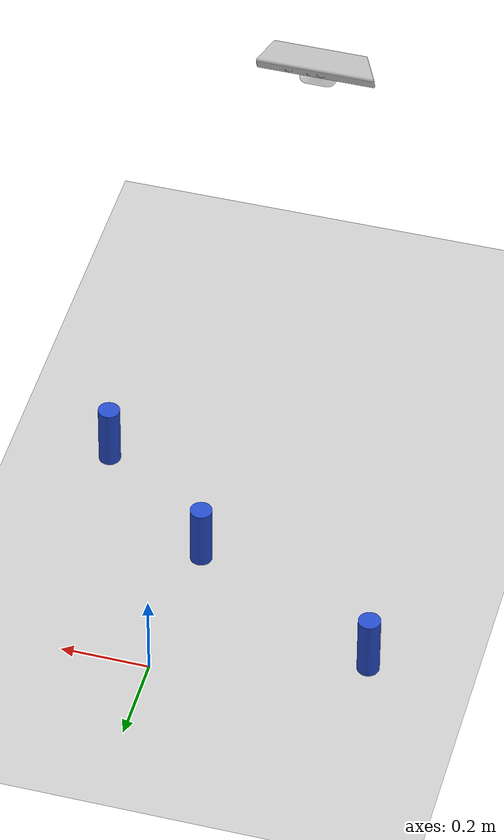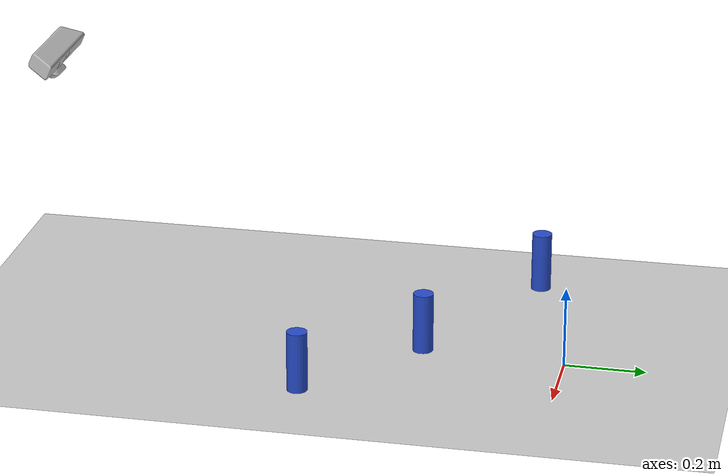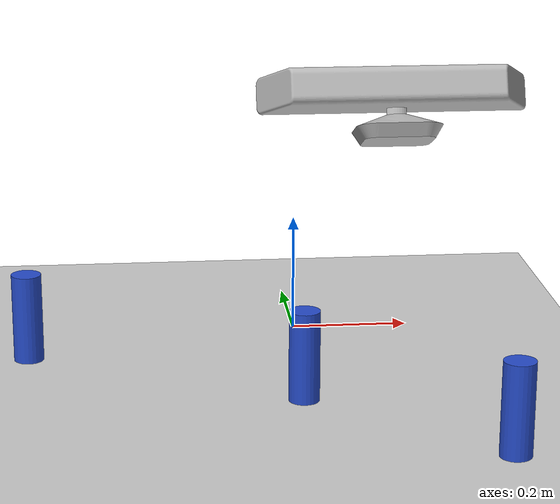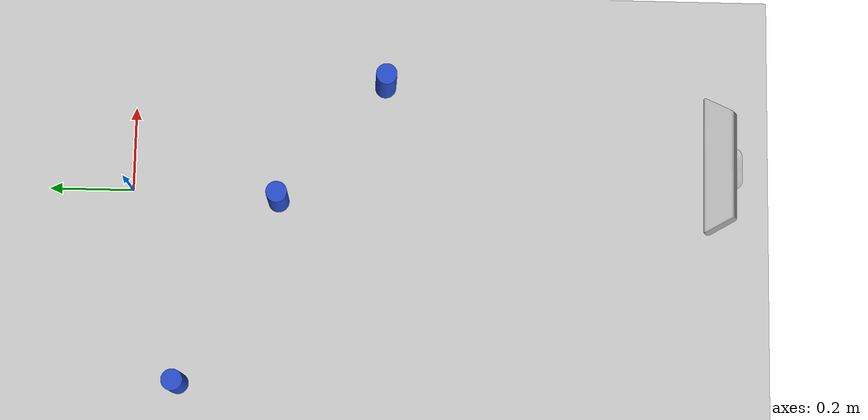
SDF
<sdf version="1.6">
 <world name="default">
  <model name="ground_plane">
   <static>1</static>
   <link name="link">
    <collision name="collision">
     <geometry><plane><normal>0 0 1</normal><size>100 100</size></plane></geometry>
     <surface>
      <contact><collide_bitmask>65535</collide_bitmask></contact>
      <friction><ode><mu>100</mu><mu2>50</mu2></ode></friction>
     </surface>
    </collision>
    <visual name="visual">
     <cast_shadows>0</cast_shadows>
     <geometry><plane><normal>0 0 1</normal><size>100 100</size></plane></geometry>
     <material>
      <script><uri>file://media/materials/scripts/gazebo.material</uri><name>Gazebo/Grey</name></script>
     </material>
    </visual>
   </link>
  </model>
  <light name="sun" type="directional">
   <pose>0 0 10 0 -0 0</pose>
   <diffuse>0.8 0.8 0.8 1</diffuse>
   <specular>0.2 0.2 0.2 1</specular>
   <attenuation>
    <range>1000</range>
    <constant>0.9</constant>
    <linear>0.01</linear>
    <quadratic>0.001</quadratic>
   </attenuation>
   <direction>-0.5 0.1 -0.9</direction>
  </light>
  <gravity>0 0 -9.8</gravity>
  <magnetic_field>6e-06 2.3e-05 -4.2e-05</magnetic_field>
  <atmosphere type="adiabatic"/>
  <physics name="default_physics" default="0" type="ode">
   <max_step_size>0.001</max_step_size>
   <real_time_factor>1</real_time_factor>
   <real_time_update_rate>1000</real_time_update_rate>
  </physics>
  <scene><ambient>0.4 0.4 0.4 1</ambient><background>0.7 0.7 0.7 1</background><shadows>1</shadows></scene>
  <spherical_coordinates>
   <surface_model>EARTH_WGS84</surface_model>
   <latitude_deg>0</latitude_deg>
   <longitude_deg>0</longitude_deg>
   <elevation>0</elevation>
   <heading_deg>0</heading_deg>
  </spherical_coordinates>
  <joint name="camera_optical_joint" type="fixed"><parent>__default__</parent><child>__default__</child></joint>
  <model name="kinect_ros">
   <link name="camera_link">
    <inertial>
     <mass>0.1</mass>
     <inertia><ixx>1</ixx><ixy>0</ixy><ixz>0</ixz><iyy>1</iyy><iyz>0</iyz><izz>1</izz></inertia>
    </inertial>
    <sensor name="kinect" type="depth">
     <camera name="__default__">
      <horizontal_fov>1.0472</horizontal_fov>
      <image><width>640</width><height>480</height><format>R8G8B8</format></image>
      <clip><near>0.05</near><far>3</far></clip>
     </camera>
     <update_rate>20</update_rate>
     <visualize>1</visualize>
     <plugin name="kinect_plugin" filename="libgazebo_ros_openni_kinect.so">
      <baseline>0.2</baseline>
      <updateRate>0.0</updateRate>
      <cameraName>camera_kinect</cameraName>
      <imageTopicName>/camera/color/image_raw</imageTopicName>
      <cameraInfoTopicName>/camera/color/camera_info</cameraInfoTopicName>
      <depthImageTopicName>/camera/depth/image_raw</depthImageTopicName>
      <depthImageCameraInfoTopicName>/camera/depth/camera_info</depthImageCameraInfoTopicName>
      <pointCloudTopicName>/camera/depth/points</pointCloudTopicName>
      <frameName>camera_link_optical</frameName>
      <pointCloudCutoff>0.5</pointCloudCutoff>
      <pointCloudCutoffMax>3.0</pointCloudCutoffMax>
      <distortionK1>0</distortionK1>
      <distortionK2>0</distortionK2>
      <distortionK3>0</distortionK3>
      <distortionT1>0</distortionT1>
      <distortionT2>0</distortionT2>
      <CxPrime>0</CxPrime>
      <Cx>0</Cx>
      <Cy>0</Cy>
      <focalLength>0</focalLength>
      <hackBaseline>0</hackBaseline>
     </plugin>
    </sensor>
    <visual name="visual">
     <geometry><mesh><uri>model://kinect/meshes/kinect.dae</uri></mesh></geometry>
     <material><shader type="pixel"/></material>
    </visual>
    <collision name="collision">
     <geometry><box><size>0.073 0.276 0.072</size></box></geometry>
     <surface>
      <friction>
       <ode><mu>1</mu><mu2>1</mu2><fdir1>0 0 0</fdir1><slip1>0</slip1><slip2>0</slip2></ode>
       <torsional>
        <coefficient>1</coefficient>
        <patch_radius>0</patch_radius>
        <surface_radius>0</surface_radius>
        <use_patch_radius>1</use_patch_radius>
        <ode><slip>0</slip></ode>
       </torsional>
      </friction>
      <bounce><restitution_coefficient>0</restitution_coefficient><threshold>1e+06</threshold></bounce>
      <contact>
       <collide_without_contact>0</collide_without_contact>
       <collide_without_contact_bitmask>1</collide_without_contact_bitmask>
       <collide_bitmask>1</collide_bitmask>
       <ode>
        <soft_cfm>0</soft_cfm>
        <soft_erp>0.2</soft_erp>
        <kp>1e+13</kp>
        <kd>1</kd>
        <max_vel>0.01</max_vel>
        <min_depth>0</min_depth>
       </ode>
       <bullet>
        <split_impulse>1</split_impulse>
        <split_impulse_penetration_threshold>-0.01</split_impulse_penetration_threshold>
        <soft_cfm>0</soft_cfm>
        <soft_erp>0.2</soft_erp>
        <kp>1e+13</kp>
        <kd>1</kd>
       </bullet>
      </contact>
     </surface>
    </collision>
   </link>
   <static>1</static>
   <pose>-0.04027 -1.24024 0.686435 -0 0.40621 1.56639</pose>
  </model>
  <model name="blue_cylinder">
   <link name="blue_cylinder_link">
    <inertial>
     <mass>1</mass>
     <inertia><ixx>0.145833</ixx><ixy>0</ixy><ixz>0</ixz><iyy>0.145833</iyy><iyz>0</iyz><izz>0.125</izz></inertia>
    </inertial>
    <pose>0 0 0.075 0 -0 0</pose>
    <visual name="visual">
     <geometry><cylinder><radius>0.025</radius><length>0.15</length></cylinder></geometry>
     <material>
      <script><name>Gazebo/Blue</name><uri>file://media/materials/scripts/gazebo.material</uri></script>
      <shader type="pixel"><normal_map>__default__</normal_map></shader>
      <ambient>0.125 0.29 0.529 1</ambient>
      <diffuse>0.125 0.29 0.529 1</diffuse>
      <specular>0.125 0.29 0.529 1</specular>
      <emissive>0.125 0.29 0.529 1</emissive>
     </material>
    </visual>
    <collision name="collision">
     <geometry><cylinder><radius>0.025</radius><length>0.15</length></cylinder></geometry>
     <surface>
      <friction>
       <ode><mu>1</mu><mu2>1</mu2><fdir1>0 0 0</fdir1><slip1>0</slip1><slip2>0</slip2></ode>
       <torsional>
        <coefficient>1</coefficient>
        <patch_radius>0</patch_radius>
        <surface_radius>0</surface_radius>
        <use_patch_radius>1</use_patch_radius>
        <ode><slip>0</slip></ode>
       </torsional>
      </friction>
      <bounce><restitution_coefficient>0</restitution_coefficient><threshold>1e+06</threshold></bounce>
      <contact>
       <collide_without_contact>0</collide_without_contact>
       <collide_without_contact_bitmask>1</collide_without_contact_bitmask>
       <collide_bitmask>1</collide_bitmask>
       <ode>
        <soft_cfm>0</soft_cfm>
        <soft_erp>0.2</soft_erp>
        <kp>1e+13</kp>
        <kd>1</kd>
        <max_vel>0.01</max_vel>
        <min_depth>0</min_depth>
       </ode>
       <bullet>
        <split_impulse>1</split_impulse>
        <split_impulse_penetration_threshold>-0.01</split_impulse_penetration_threshold>
        <soft_cfm>0</soft_cfm>
        <soft_erp>0.2</soft_erp>
        <kp>1e+13</kp>
        <kd>1</kd>
       </bullet>
      </contact>
     </surface>
    </collision>
   </link>
   <static>0</static>
   <pose>-0.020448 -0.350463 -9e-06 0 1e-06 -3e-06</pose>
  </model>
  <model name="blue_cylinder_0">
   <link name="blue_cylinder_link">
    <inertial>
     <mass>1</mass>
     <inertia><ixx>0.145833</ixx><ixy>0</ixy><ixz>0</ixz><iyy>0.145833</iyy><iyz>0</iyz><izz>0.125</izz></inertia>
    </inertial>
    <pose>0 0 0.075 0 -0 0</pose>
    <visual name="visual">
     <geometry><cylinder><radius>0.025</radius><length>0.15</length></cylinder></geometry>
     <material>
      <script><name>Gazebo/Blue</name><uri>file://media/materials/scripts/gazebo.material</uri></script>
      <shader type="pixel"><normal_map>__default__</normal_map></shader>
      <ambient>0.125 0.29 0.529 1</ambient>
      <diffuse>0.125 0.29 0.529 1</diffuse>
      <specular>0.125 0.29 0.529 1</specular>
      <emissive>0.125 0.29 0.529 1</emissive>
     </material>
    </visual>
    <collision name="collision">
     <geometry><cylinder><radius>0.025</radius><length>0.15</length></cylinder></geometry>
     <surface>
      <friction>
       <ode><mu>1</mu><mu2>1</mu2><fdir1>0 0 0</fdir1><slip1>0</slip1><slip2>0</slip2></ode>
       <torsional>
        <coefficient>1</coefficient>
        <patch_radius>0</patch_radius>
        <surface_radius>0</surface_radius>
        <use_patch_radius>1</use_patch_radius>
        <ode><slip>0</slip></ode>
       </torsional>
      </friction>
      <bounce><restitution_coefficient>0</restitution_coefficient><threshold>1e+06</threshold></bounce>
      <contact>
       <collide_without_contact>0</collide_without_contact>
       <collide_without_contact_bitmask>1</collide_without_contact_bitmask>
       <collide_bitmask>1</collide_bitmask>
       <ode>
        <soft_cfm>0</soft_cfm>
        <soft_erp>0.2</soft_erp>
        <kp>1e+13</kp>
        <kd>1</kd>
        <max_vel>0.01</max_vel>
        <min_depth>0</min_depth>
       </ode>
       <bullet>
        <split_impulse>1</split_impulse>
        <split_impulse_penetration_threshold>-0.01</split_impulse_penetration_threshold>
        <soft_cfm>0</soft_cfm>
        <soft_erp>0.2</soft_erp>
        <kp>1e+13</kp>
        <kd>1</kd>
       </bullet>
      </contact>
     </surface>
    </collision>
   </link>
   <static>0</static>
   <pose>-0.461256 -0.124266 -1e-06 -1e-06 -0 -9e-06</pose>
  </model>
  <model name="blue_cylinder_1">
   <link name="blue_cylinder_link">
    <inertial>
     <mass>1</mass>
     <inertia><ixx>0.145833</ixx><ixy>0</ixy><ixz>0</ixz><iyy>0.145833</iyy><iyz>0</iyz><izz>0.125</izz></inertia>
    </inertial>
    <pose>0 0 0.075 0 -0 0</pose>
    <visual name="visual">
     <geometry><cylinder><radius>0.025</radius><length>0.15</length></cylinder></geometry>
     <material>
      <script><name>Gazebo/Blue</name><uri>file://media/materials/scripts/gazebo.material</uri></script>
      <shader type="pixel"><normal_map>__default__</normal_map></shader>
      <ambient>0.125 0.29 0.529 1</ambient>
      <diffuse>0.125 0.29 0.529 1</diffuse>
      <specular>0.125 0.29 0.529 1</specular>
      <emissive>0.125 0.29 0.529 1</emissive>
     </material>
    </visual>
    <collision name="collision">
     <geometry><cylinder><radius>0.025</radius><length>0.15</length></cylinder></geometry>
     <surface>
      <friction>
       <ode><mu>1</mu><mu2>1</mu2><fdir1>0 0 0</fdir1><slip1>0</slip1><slip2>0</slip2></ode>
       <torsional>
        <coefficient>1</coefficient>
        <patch_radius>0</patch_radius>
        <surface_radius>0</surface_radius>
        <use_patch_radius>1</use_patch_radius>
        <ode><slip>0</slip></ode>
       </torsional>
      </friction>
      <bounce><restitution_coefficient>0</restitution_coefficient><threshold>1e+06</threshold></bounce>
      <contact>
       <collide_without_contact>0</collide_without_contact>
       <collide_without_contact_bitmask>1</collide_without_contact_bitmask>
       <collide_bitmask>1</collide_bitmask>
       <ode>
        <soft_cfm>0</soft_cfm>
        <soft_erp>0.2</soft_erp>
        <kp>1e+13</kp>
        <kd>1</kd>
        <max_vel>0.01</max_vel>
        <min_depth>0</min_depth>
       </ode>
       <bullet>
        <split_impulse>1</split_impulse>
        <split_impulse_penetration_threshold>-0.01</split_impulse_penetration_threshold>
        <soft_cfm>0</soft_cfm>
        <soft_erp>0.2</soft_erp>
        <kp>1e+13</kp>
        <kd>1</kd>
       </bullet>
      </contact>
     </surface>
    </collision>
   </link>
   <static>0</static>
   <pose>0.265498 -0.601191 -1e-05 0 1e-06 -3e-06</pose>
  </model>
 </world>
</sdf>
